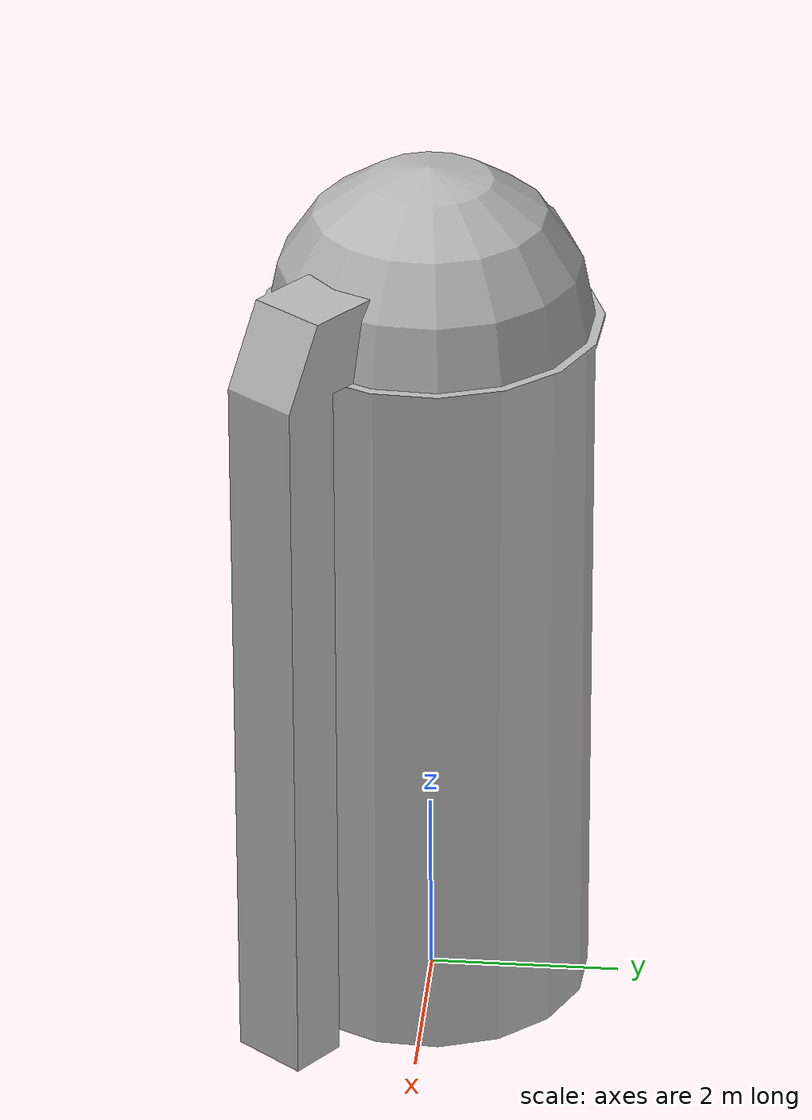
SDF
<sdf version="1.7">
  <model name="silo">
    <static>true</static>
    <link name="silo_link">
      <collision name="silo_collision">
        <geometry>
          <mesh>
            <uri>model://silo/silo.dae</uri>
            <scale>1 1 1</scale>
          </mesh>
        </geometry>
      </collision>
      <visual name="silo_visual">
        <geometry>
          <mesh>
            <uri>model://silo/silo.dae</uri>
            <scale>1 1 1</scale>
          </mesh>
        </geometry>
      </visual>
    </link>
  </model>
</sdf>
